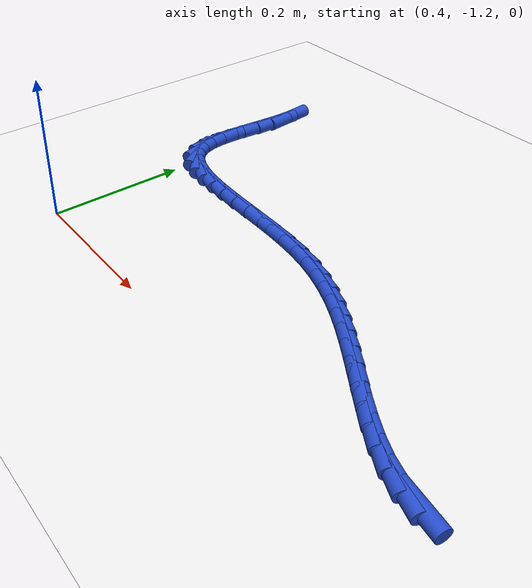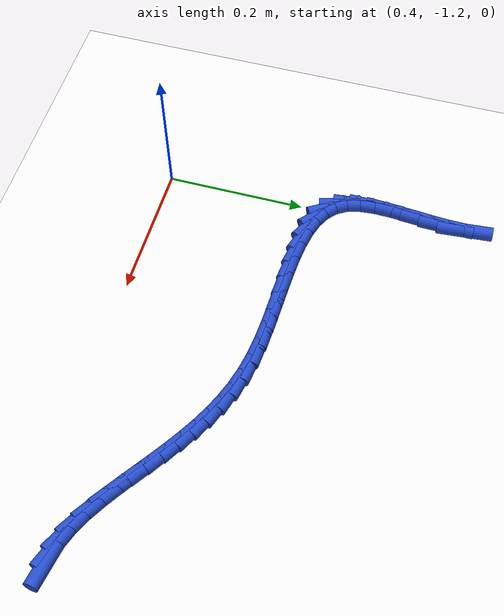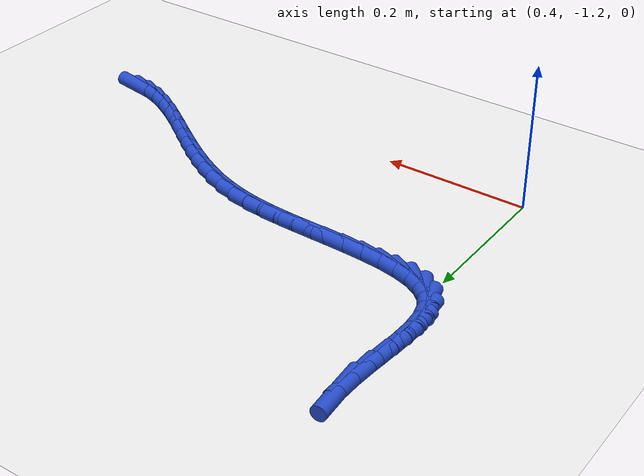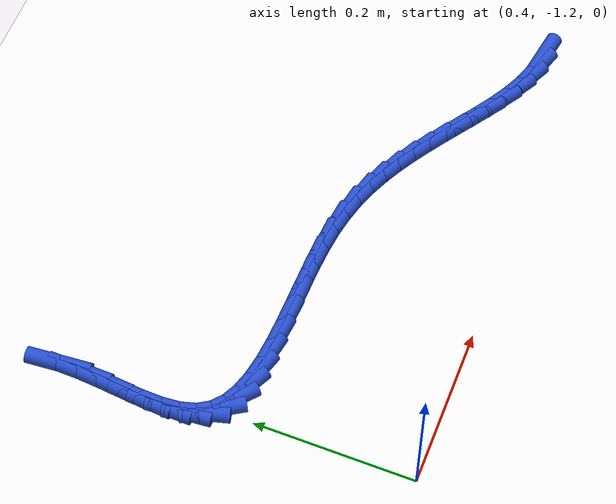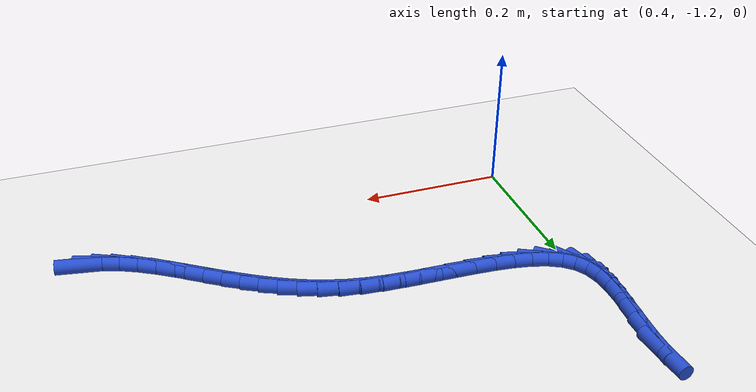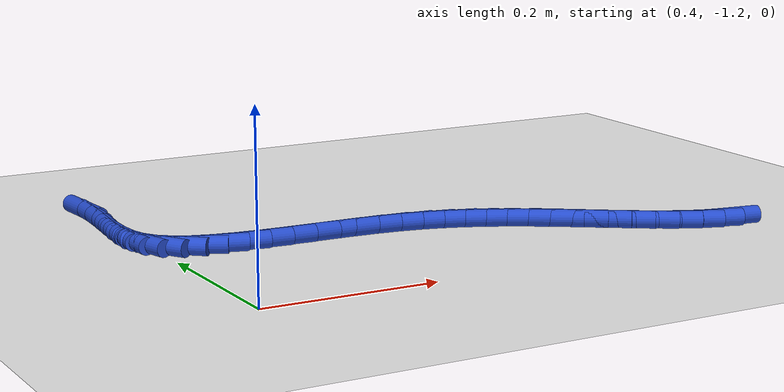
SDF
<sdf version="1.6">
 <world name="default">
  <model name="ground_plane">
   <static>1</static>
   <link name="link">
    <collision name="collision">
     <geometry><plane><normal>0 0 1</normal><size>100 100</size></plane></geometry>
     <surface><friction><ode><mu>100</mu><mu2>50</mu2></ode></friction></surface>
    </collision>
    <visual name="visual">
     <cast_shadows>0</cast_shadows>
     <geometry><plane><normal>0 0 1</normal><size>100 100</size></plane></geometry>
     <material>
      <script><uri>file://media/materials/scripts/gazebo.material</uri><name>Gazebo/WhiteGlow</name></script>
     </material>
    </visual>
   </link>
  </model>
  <model name="line">
   <link name="link_210">
    <pose>1.0066939338829568 -1.153549735065547 0.01 0 1.57 -0.16759548212394149</pose>
    <collision name="collision">
     <geometry><cylinder><radius>0.01</radius><length>0.08</length></cylinder></geometry>
    </collision>
    <visual name="visual">
     <material>
      <script><name>Gazebo/Blue</name><uri>file://media/materials/scripts/gazebo.material</uri></script>
     </material>
     <geometry><cylinder><radius>0.01</radius><length>0.08</length></cylinder></geometry>
    </visual>
   </link>
   <link name="link_211">
    <pose>0.9848037407545668 -1.1498462981421287 0.01 0 1.57 -0.3305116847030537</pose>
    <collision name="collision">
     <geometry><cylinder><radius>0.01</radius><length>0.08</length></cylinder></geometry>
    </collision>
    <visual name="visual">
     <material>
      <script><name>Gazebo/Blue</name><uri>file://media/materials/scripts/gazebo.material</uri></script>
     </material>
     <geometry><cylinder><radius>0.01</radius><length>0.08</length></cylinder></geometry>
    </visual>
   </link>
   <link name="link_212">
    <pose>0.9624868611122668 -1.1421894507165835 0.01 0 1.57 -0.4455246486181878</pose>
    <collision name="collision">
     <geometry><cylinder><radius>0.01</radius><length>0.08</length></cylinder></geometry>
    </collision>
    <visual name="visual">
     <material>
      <script><name>Gazebo/Blue</name><uri>file://media/materials/scripts/gazebo.material</uri></script>
     </material>
     <geometry><cylinder><radius>0.01</radius><length>0.08</length></cylinder></geometry>
    </visual>
   </link>
   <link name="link_213">
    <pose>0.9399268698023131 -1.1314159878672618 0.01 0 1.57 -0.5233962456804767</pose>
    <collision name="collision">
     <geometry><cylinder><radius>0.01</radius><length>0.08</length></cylinder></geometry>
    </collision>
    <visual name="visual">
     <material>
      <script><name>Gazebo/Blue</name><uri>file://media/materials/scripts/gazebo.material</uri></script>
     </material>
     <geometry><cylinder><radius>0.01</radius><length>0.08</length></cylinder></geometry>
    </visual>
   </link>
   <link name="link_214">
    <pose>0.9173073416709621 -1.118362704672516 0.01 0 1.57 -0.5724351523027137</pose>
    <collision name="collision">
     <geometry><cylinder><radius>0.01</radius><length>0.08</length></cylinder></geometry>
    </collision>
    <visual name="visual">
     <material>
      <script><name>Gazebo/Blue</name><uri>file://media/materials/scripts/gazebo.material</uri></script>
     </material>
     <geometry><cylinder><radius>0.01</radius><length>0.08</length></cylinder></geometry>
    </visual>
   </link>
   <link name="link_215">
    <pose>0.8948118515644697 -1.103866396210697 0.01 0 1.57 -0.5976320869555921</pose>
    <collision name="collision">
     <geometry><cylinder><radius>0.01</radius><length>0.08</length></cylinder></geometry>
    </collision>
    <visual name="visual">
     <material>
      <script><name>Gazebo/Blue</name><uri>file://media/materials/scripts/gazebo.material</uri></script>
     </material>
     <geometry><cylinder><radius>0.01</radius><length>0.08</length></cylinder></geometry>
    </visual>
   </link>
   <link name="link_216">
    <pose>0.872623974329092 -1.088763857560155 0.01 0 1.57 -0.6010003949283884</pose>
    <collision name="collision">
     <geometry><cylinder><radius>0.01</radius><length>0.08</length></cylinder></geometry>
    </collision>
    <visual name="visual">
     <material>
      <script><name>Gazebo/Blue</name><uri>file://media/materials/scripts/gazebo.material</uri></script>
     </material>
     <geometry><cylinder><radius>0.01</radius><length>0.08</length></cylinder></geometry>
    </visual>
   </link>
   <link name="link_217">
    <pose>0.8509230061201335 -1.0738855340539195 0.01 0 1.57 -0.5865536994265601</pose>
    <collision name="collision">
     <geometry><cylinder><radius>0.01</radius><length>0.08</length></cylinder></geometry>
    </collision>
    <visual name="visual">
     <material>
      <script><name>Gazebo/Blue</name><uri>file://media/materials/scripts/gazebo.material</uri></script>
     </material>
     <geometry><cylinder><radius>0.01</radius><length>0.08</length></cylinder></geometry>
    </visual>
   </link>
   <link name="link_218">
    <pose>0.8296984458150558 -1.0597802044146427 0.01 0 1.57 -0.5597499210811162</pose>
    <collision name="collision">
     <geometry><cylinder><radius>0.01</radius><length>0.08</length></cylinder></geometry>
    </collision>
    <visual name="visual">
     <material>
      <script><name>Gazebo/Blue</name><uri>file://media/materials/scripts/gazebo.material</uri></script>
     </material>
     <geometry><cylinder><radius>0.01</radius><length>0.08</length></cylinder></geometry>
    </visual>
   </link>
   <link name="link_219">
    <pose>0.8086787350204101 -1.0466092281277413 0.01 0 1.57 -0.5206880574966188</pose>
    <collision name="collision">
     <geometry><cylinder><radius>0.01</radius><length>0.08</length></cylinder></geometry>
    </collision>
    <visual name="visual">
     <material>
      <script><name>Gazebo/Blue</name><uri>file://media/materials/scripts/gazebo.material</uri></script>
     </material>
     <geometry><cylinder><radius>0.01</radius><length>0.08</length></cylinder></geometry>
    </visual>
   </link>
   <link name="link_220">
    <pose>0.7875733290831083 -1.0345057883240665 0.01 0 1.57 -0.46965864891897263</pose>
    <collision name="collision">
     <geometry><cylinder><radius>0.01</radius><length>0.08</length></cylinder></geometry>
    </collision>
    <visual name="visual">
     <material>
      <script><name>Gazebo/Blue</name><uri>file://media/materials/scripts/gazebo.material</uri></script>
     </material>
     <geometry><cylinder><radius>0.01</radius><length>0.08</length></cylinder></geometry>
    </visual>
   </link>
   <link name="link_221">
    <pose>0.7660916833500633 -1.023603068134468 0.01 0 1.57 -0.4078112055323829</pose>
    <collision name="collision">
     <geometry><cylinder><radius>0.01</radius><length>0.08</length></cylinder></geometry>
    </collision>
    <visual name="visual">
     <material>
      <script><name>Gazebo/Blue</name><uri>file://media/materials/scripts/gazebo.material</uri></script>
     </material>
     <geometry><cylinder><radius>0.01</radius><length>0.08</length></cylinder></geometry>
    </visual>
   </link>
   <link name="link_222">
    <pose>0.7439432531681872 -1.014034250689798 0.01 0 1.57 -0.33724209168702607</pose>
    <collision name="collision">
     <geometry><cylinder><radius>0.01</radius><length>0.08</length></cylinder></geometry>
    </collision>
    <visual name="visual">
     <material>
      <script><name>Gazebo/Blue</name><uri>file://media/materials/scripts/gazebo.material</uri></script>
     </material>
     <geometry><cylinder><radius>0.01</radius><length>0.08</length></cylinder></geometry>
    </visual>
   </link>
   <link name="link_223">
    <pose>0.7208374938843922 -1.0059325191209059 0.01 0 1.57 -0.2608768702455094</pose>
    <collision name="collision">
     <geometry><cylinder><radius>0.01</radius><length>0.08</length></cylinder></geometry>
    </collision>
    <visual name="visual">
     <material>
      <script><name>Gazebo/Blue</name><uri>file://media/materials/scripts/gazebo.material</uri></script>
     </material>
     <geometry><cylinder><radius>0.01</radius><length>0.08</length></cylinder></geometry>
    </visual>
   </link>
   <link name="link_224">
    <pose>0.6964838608455906 -0.9994310565586428 0.01 0 1.57 -0.18211676760524267</pose>
    <collision name="collision">
     <geometry><cylinder><radius>0.01</radius><length>0.08</length></cylinder></geometry>
    </collision>
    <visual name="visual">
     <material>
      <script><name>Gazebo/Blue</name><uri>file://media/materials/scripts/gazebo.material</uri></script>
     </material>
     <geometry><cylinder><radius>0.01</radius><length>0.08</length></cylinder></geometry>
    </visual>
   </link>
   <link name="link_225">
    <pose>0.6705920246731563 -0.994662887602038 0.01 0 1.57 -0.11020339632834408</pose>
    <collision name="collision">
     <geometry><cylinder><radius>0.01</radius><length>0.08</length></cylinder></geometry>
    </collision>
    <visual name="visual">
     <material>
      <script><name>Gazebo/Blue</name><uri>file://media/materials/scripts/gazebo.material</uri></script>
     </material>
     <geometry><cylinder><radius>0.01</radius><length>0.08</length></cylinder></geometry>
    </visual>
   </link>
   <link name="link_226">
    <pose>0.6430669828916519 -0.9916171947540283 0.01 0 1.57 -0.06066662951272055</pose>
    <collision name="collision">
     <geometry><cylinder><radius>0.01</radius><length>0.08</length></cylinder></geometry>
    </collision>
    <visual name="visual">
     <material>
      <script><name>Gazebo/Blue</name><uri>file://media/materials/scripts/gazebo.material</uri></script>
     </material>
     <geometry><cylinder><radius>0.01</radius><length>0.08</length></cylinder></geometry>
    </visual>
   </link>
   <link name="link_227">
    <pose>0.6143692590927812 -0.9898740615525556 0.01 0 1.57 -0.0318103178593869</pose>
    <collision name="collision">
     <geometry><cylinder><radius>0.01</radius><length>0.08</length></cylinder></geometry>
    </collision>
    <visual name="visual">
     <material>
      <script><name>Gazebo/Blue</name><uri>file://media/materials/scripts/gazebo.material</uri></script>
     </material>
     <geometry><cylinder><radius>0.01</radius><length>0.08</length></cylinder></geometry>
    </visual>
   </link>
   <link name="link_228">
    <pose>0.5850574758181545 -0.988941329779055 0.01 0 1.57 -0.02092124836835091</pose>
    <collision name="collision">
     <geometry><cylinder><radius>0.01</radius><length>0.08</length></cylinder></geometry>
    </collision>
    <visual name="visual">
     <material>
      <script><name>Gazebo/Blue</name><uri>file://media/materials/scripts/gazebo.material</uri></script>
     </material>
     <geometry><cylinder><radius>0.01</radius><length>0.08</length></cylinder></geometry>
    </visual>
   </link>
   <link name="link_229">
    <pose>0.5556902556093828 -0.9883268412149615 0.01 0 1.57 -0.027307602772386842</pose>
    <collision name="collision">
     <geometry><cylinder><radius>0.01</radius><length>0.08</length></cylinder></geometry>
    </collision>
    <visual name="visual">
     <material>
      <script><name>Gazebo/Blue</name><uri>file://media/materials/scripts/gazebo.material</uri></script>
     </material>
     <geometry><cylinder><radius>0.01</radius><length>0.08</length></cylinder></geometry>
    </visual>
   </link>
   <link name="link_230">
    <pose>0.5268262210080776 -0.9875384376417108 0.01 0 1.57 -0.05226747119261809</pose>
    <collision name="collision">
     <geometry><cylinder><radius>0.01</radius><length>0.08</length></cylinder></geometry>
    </collision>
    <visual name="visual">
     <material>
      <script><name>Gazebo/Blue</name><uri>file://media/materials/scripts/gazebo.material</uri></script>
     </material>
     <geometry><cylinder><radius>0.01</radius><length>0.08</length></cylinder></geometry>
    </visual>
   </link>
   <link name="link_231">
    <pose>0.49902399455584967 -0.9860839608407379 0.01 0 1.57 -0.099461742721505</pose>
    <collision name="collision">
     <geometry><cylinder><radius>0.01</radius><length>0.08</length></cylinder></geometry>
    </collision>
    <visual name="visual">
     <material>
      <script><name>Gazebo/Blue</name><uri>file://media/materials/scripts/gazebo.material</uri></script>
     </material>
     <geometry><cylinder><radius>0.01</radius><length>0.08</length></cylinder></geometry>
    </visual>
   </link>
   <link name="link_232">
    <pose>0.47284219879431044 -0.9834712525934785 0.01 0 1.57 -0.17577580426423506</pose>
    <collision name="collision">
     <geometry><cylinder><radius>0.01</radius><length>0.08</length></cylinder></geometry>
    </collision>
    <visual name="visual">
     <material>
      <script><name>Gazebo/Blue</name><uri>file://media/materials/scripts/gazebo.material</uri></script>
     </material>
     <geometry><cylinder><radius>0.01</radius><length>0.08</length></cylinder></geometry>
    </visual>
   </link>
   <link name="link_233">
    <pose>0.4488394562650707 -0.9792081546813672 0.01 0 1.57 -0.29258354773342327</pose>
    <collision name="collision">
     <geometry><cylinder><radius>0.01</radius><length>0.08</length></cylinder></geometry>
    </collision>
    <visual name="visual">
     <material>
      <script><name>Gazebo/Blue</name><uri>file://media/materials/scripts/gazebo.material</uri></script>
     </material>
     <geometry><cylinder><radius>0.01</radius><length>0.08</length></cylinder></geometry>
    </visual>
   </link>
   <link name="link_234">
    <pose>0.4275743895097414 -0.9728025088858399 0.01 0 1.57 -0.4661362790376554</pose>
    <collision name="collision">
     <geometry><cylinder><radius>0.01</radius><length>0.08</length></cylinder></geometry>
    </collision>
    <visual name="visual">
     <material>
      <script><name>Gazebo/Blue</name><uri>file://media/materials/scripts/gazebo.material</uri></script>
     </material>
     <geometry><cylinder><radius>0.01</radius><length>0.08</length></cylinder></geometry>
    </visual>
   </link>
   <link name="link_235">
    <pose>0.4096056210699346 -0.9637621569883313 0.01 0 1.57 -0.7114634436575343</pose>
    <collision name="collision">
     <geometry><cylinder><radius>0.01</radius><length>0.08</length></cylinder></geometry>
    </collision>
    <visual name="visual">
     <material>
      <script><name>Gazebo/Blue</name><uri>file://media/materials/scripts/gazebo.material</uri></script>
     </material>
     <geometry><cylinder><radius>0.01</radius><length>0.08</length></cylinder></geometry>
    </visual>
   </link>
   <link name="link_236">
    <pose>0.39549177348726106 -0.9515949407702774 0.01 0 1.57 -1.0190302206932365</pose>
    <collision name="collision">
     <geometry><cylinder><radius>0.01</radius><length>0.08</length></cylinder></geometry>
    </collision>
    <visual name="visual">
     <material>
      <script><name>Gazebo/Blue</name><uri>file://media/materials/scripts/gazebo.material</uri></script>
     </material>
     <geometry><cylinder><radius>0.01</radius><length>0.08</length></cylinder></geometry>
    </visual>
   </link>
   <link name="link_237">
    <pose>0.38578012488460806 -0.9358174400189957 0.01 0 1.57 -1.3016260757678937</pose>
    <collision name="collision">
     <geometry><cylinder><radius>0.01</radius><length>0.08</length></cylinder></geometry>
    </collision>
    <visual name="visual">
     <material>
      <script><name>Gazebo/Blue</name><uri>file://media/materials/scripts/gazebo.material</uri></script>
     </material>
     <geometry><cylinder><radius>0.01</radius><length>0.08</length></cylinder></geometry>
    </visual>
   </link>
   <link name="link_238">
    <pose>0.3804244616825977 -0.916403369797922 0.01 0 1.57 -1.4853568205521441</pose>
    <collision name="collision">
     <geometry><cylinder><radius>0.01</radius><length>0.08</length></cylinder></geometry>
    </collision>
    <visual name="visual">
     <material>
      <script><name>Gazebo/Blue</name><uri>file://media/materials/scripts/gazebo.material</uri></script>
     </material>
     <geometry><cylinder><radius>0.01</radius><length>0.08</length></cylinder></geometry>
    </visual>
   </link>
   <link name="link_239">
    <pose>0.3785055614054823 -0.8939988777611628 0.01 0 1.57 1.54938756418977</pose>
    <collision name="collision">
     <geometry><cylinder><radius>0.01</radius><length>0.08</length></cylinder></geometry>
    </collision>
    <visual name="visual">
     <material>
      <script><name>Gazebo/Blue</name><uri>file://media/materials/scripts/gazebo.material</uri></script>
     </material>
     <geometry><cylinder><radius>0.01</radius><length>0.08</length></cylinder></geometry>
    </visual>
   </link>
   <link name="link_240">
    <pose>0.3790343304756273 -0.8693039295780248 0.01 0 1.57 1.4953335947987958</pose>
    <collision name="collision">
     <geometry><cylinder><radius>0.01</radius><length>0.08</length></cylinder></geometry>
    </collision>
    <visual name="visual">
     <material>
      <script><name>Gazebo/Blue</name><uri>file://media/materials/scripts/gazebo.material</uri></script>
     </material>
     <geometry><cylinder><radius>0.01</radius><length>0.08</length></cylinder></geometry>
    </visual>
   </link>
   <link name="link_241">
    <pose>0.3810216753153983 -0.843018490917814 0.01 0 1.57 1.480637003289136</pose>
    <collision name="collision">
     <geometry><cylinder><radius>0.01</radius><length>0.08</length></cylinder></geometry>
    </collision>
    <visual name="visual">
     <material>
      <script><name>Gazebo/Blue</name><uri>file://media/materials/scripts/gazebo.material</uri></script>
     </material>
     <geometry><cylinder><radius>0.01</radius><length>0.08</length></cylinder></geometry>
    </visual>
   </link>
   <link name="link_242">
    <pose>0.3834785023471609 -0.8158425274498368 0.01 0 1.57 1.500126420020736</pose>
    <collision name="collision">
     <geometry><cylinder><radius>0.01</radius><length>0.08</length></cylinder></geometry>
    </collision>
    <visual name="visual">
     <material>
      <script><name>Gazebo/Blue</name><uri>file://media/materials/scripts/gazebo.material</uri></script>
     </material>
     <geometry><cylinder><radius>0.01</radius><length>0.08</length></cylinder></geometry>
    </visual>
   </link>
   <link name="link_243">
    <pose>0.38541571799328067 -0.7884760048433985 0.01 0 1.57 1.554842479575233</pose>
    <collision name="collision">
     <geometry><cylinder><radius>0.01</radius><length>0.08</length></cylinder></geometry>
    </collision>
    <visual name="visual">
     <material>
      <script><name>Gazebo/Blue</name><uri>file://media/materials/scripts/gazebo.material</uri></script>
     </material>
     <geometry><cylinder><radius>0.01</radius><length>0.08</length></cylinder></geometry>
    </visual>
   </link>
   <link name="link_244">
    <pose>0.3858442286761233 -0.7616188887678081 0.01 0 1.57 -1.4902924453128257</pose>
    <collision name="collision">
     <geometry><cylinder><radius>0.01</radius><length>0.08</length></cylinder></geometry>
    </collision>
    <visual name="visual">
     <material>
      <script><name>Gazebo/Blue</name><uri>file://media/materials/scripts/gazebo.material</uri></script>
     </material>
     <geometry><cylinder><radius>0.01</radius><length>0.08</length></cylinder></geometry>
    </visual>
   </link>
  </model>
 </world>
</sdf>
